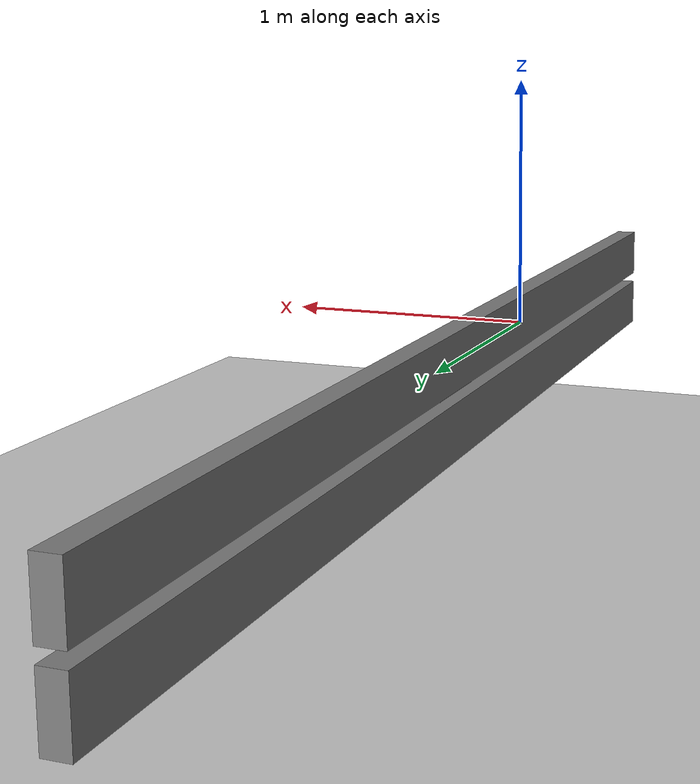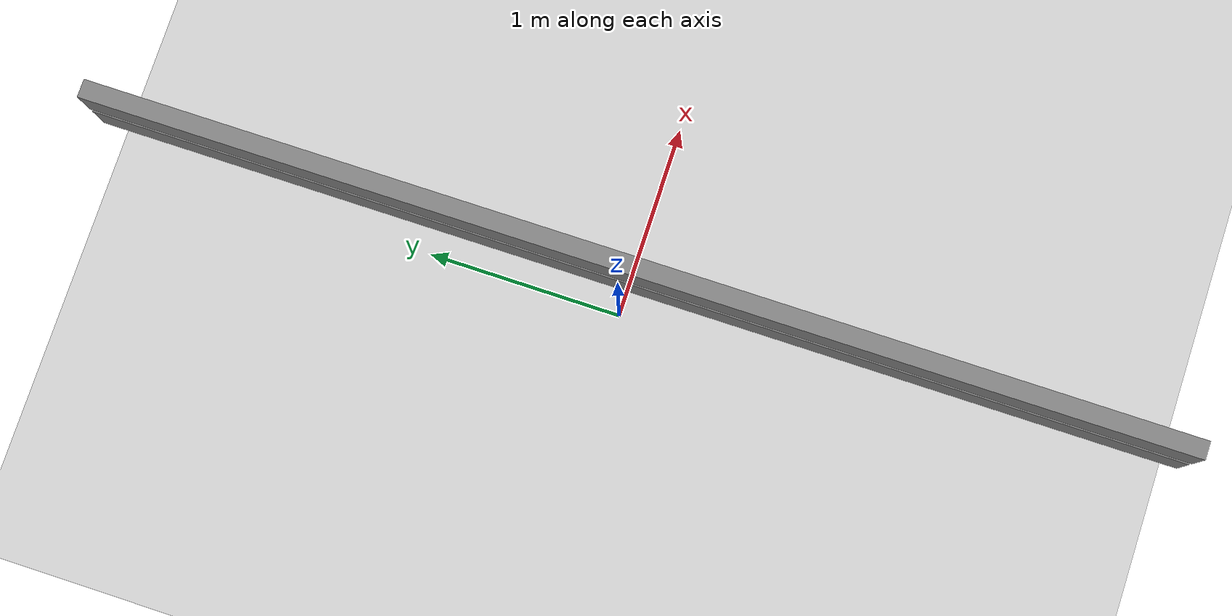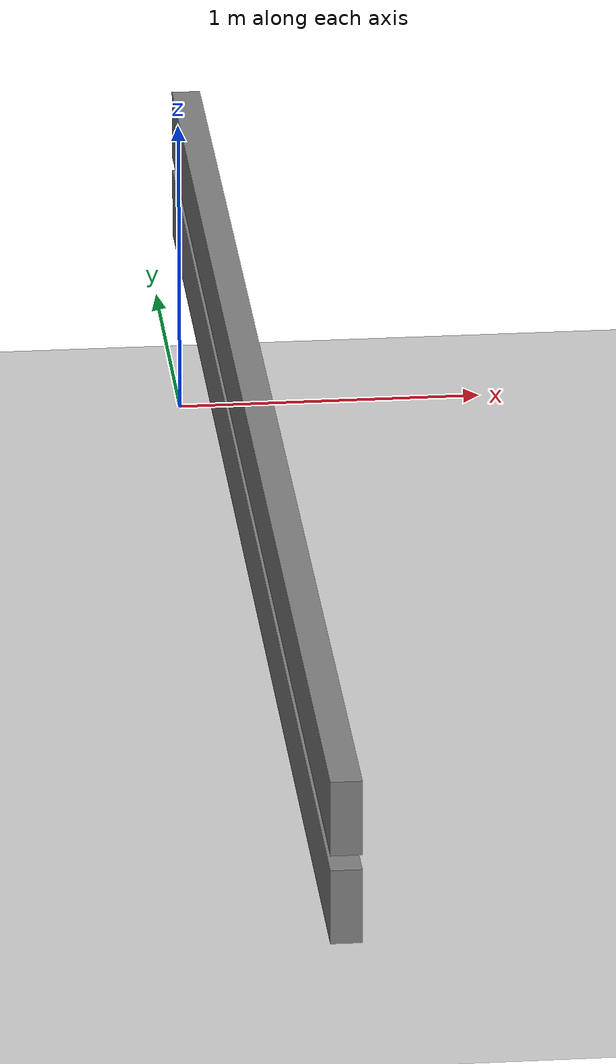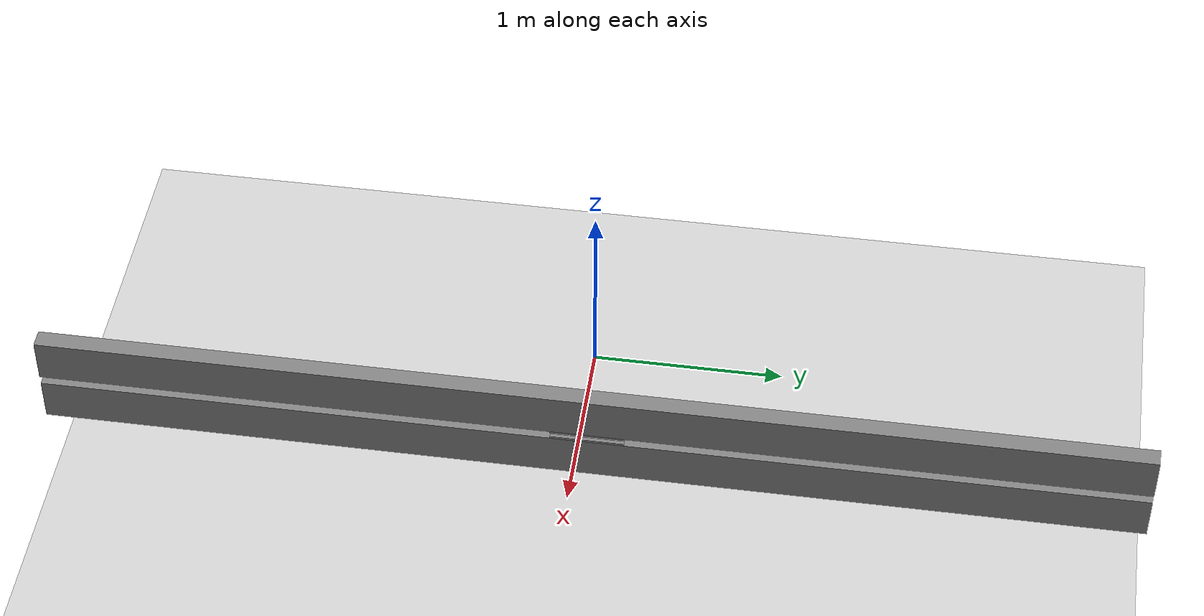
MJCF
<mujoco model="empty_arena">
  <asset>
    <texture file="../textures/light-gray-floor-tile.png" type="2d" name="texplane"/>
    <mesh name="channel" file="../objects/meshes/channel.stl" />
    <material name="floorplane" reflectance="0.01" shininess="0.0" specular="0.0" texrepeat="2 2" texture="texplane" texuniform="true"/>
  </asset>
  <worldbody>
    <body name="channel" pos="0.3 0. -0.3" quat="0.5 -0.5 -0.5 0.5">
         <geom type="mesh" contype="0" conaffinity="0" group="1" pos="0 0 0." quat="0 0 0 1" rgba="0.5 0.5 0.5 1" name="channel_visual" mesh="channel" />
         <geom type="mesh" group="0" rgba="0.1 0.1 0.1 1" pos="0 0 0." quat="0 0 0 1" mesh="channel" name="channel_collision" />
    </body>
    <geom group="1" name="top_wall" pos="0.267 0 -0.15" quat="0 0 0 1" size="0.05 3 .125" type="box" rgba="0.5 0.5 0.5 1"/>
    <geom group="1" name="bottom_wall" pos="0.267 0 -0.45" quat="0 0 0 1" size="0.05 3 .125" type="box" rgba="0.5 0.5 0.5 1"/>
    <geom condim="3" group="1" material="floorplane" name="floor" pos="0 0 -1" size="3 3 .125" type="plane"/>
    <light pos="1.0 1.0 1.5" dir="-0.2 -0.2 -1" specular="0.3 0.3 0.3" directional="true" castshadow="false"/>
    <!-- front view -->
    <camera mode="fixed" name="frontview" pos="1.6 0 1.45" quat="0.56 0.43 0.43 0.56"/>
    <!-- bird view -->
    <camera mode="fixed" name="birdview" pos="-0.2 0 3.0" quat="0.7071 0 0 0.7071"/>
    <!-- agent view -->
    <camera mode="fixed" name="agentview" pos="0.5 0 1.35" quat="0.653 0.271 0.271 0.653"/>
    <!-- side view -->
    <camera mode="fixed" name="sideview" pos="-0.05651774593317116 1.2761224129427358 1.4879572214102434" quat="0.009905065491771751 0.006877963156909582 0.5912228352893879 0.806418094001364" />
  </worldbody>
</mujoco>
